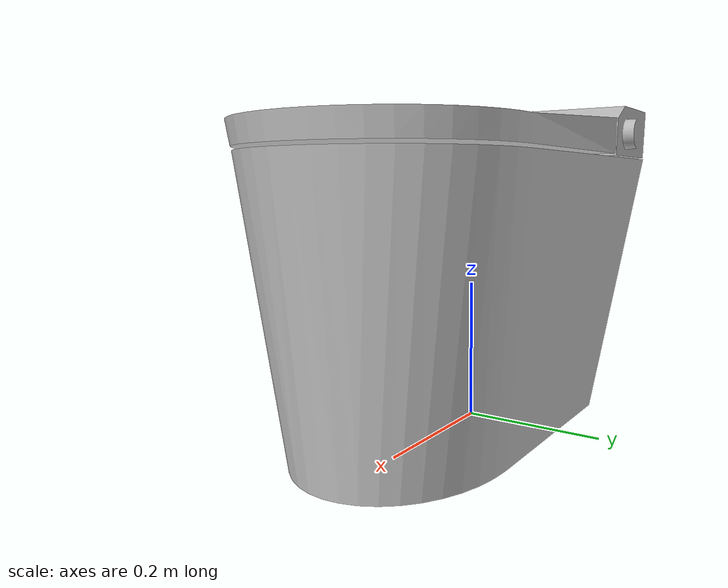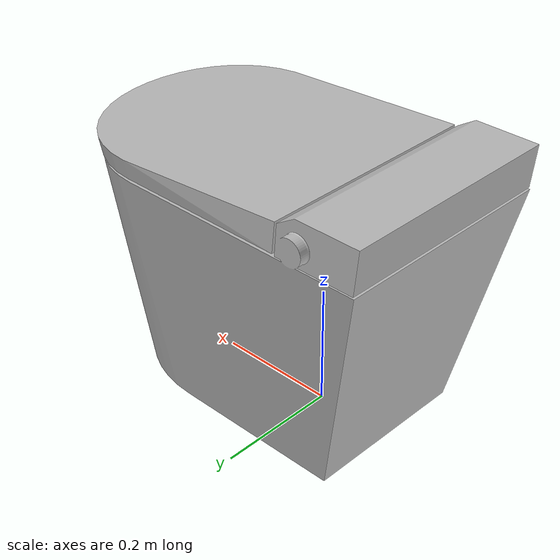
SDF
<?xml version='1.0'?>
<sdf version='1.6'>
  <model name='08_Toilet'>
    <link name='body'>
	  <inertial>
        <mass>50</mass>
        <pose frame=''>0 0 0 0 0 0</pose>
        <inertia>
          <ixx>1.5217041666</ixx>
          <ixy>0</ixy>
          <ixz>0</ixz>
          <iyy>1.39503750</iyy>
          <iyz>0</iyz>
          <izz>1.206666</izz>
        </inertia>
      </inertial>
      <pose frame=''>0 0 0 0 -0 0</pose>
      <self_collide>0</self_collide>
      <kinematic>0</kinematic>
      <gravity>1</gravity>
      <visual name='visual'>
        <geometry>
          <mesh>
            <uri>model://Toilet_37fa78cd7dc4_lod0/meshes/visual_LowPoly_08_Toilet.dae</uri>
          </mesh>
        </geometry>
		<meta> <layer> 1 </layer></meta>
      </visual>
      <collision name='collision_0'>
        <laser_retro>0</laser_retro>
        <max_contacts>10</max_contacts>
        <pose frame=''>0 0 0 0 -0 0</pose>
        <geometry>
          <mesh>
            <uri>model://Toilet_37fa78cd7dc4_lod0/meshes/collision_08_Toilet.dae</uri>
            <scale>1 1 1</scale>
          </mesh>
        </geometry>
		<surface>
          <friction>
            <ode>
              <mu>0.6</mu>
              <mu2>0.6</mu2>
              <fdir1>0 0 0</fdir1>
              <slip1>0</slip1>
              <slip2>0</slip2>
            </ode>
            <torsional>
              <coefficient>1</coefficient>
              <patch_radius>0</patch_radius>
              <surface_radius>0</surface_radius>
              <use_patch_radius>1</use_patch_radius>
              <ode>
                <slip>0</slip>
              </ode>
            </torsional>
          </friction>
        </surface>
      </collision>
    </link>
    <static>true</static>
  </model>
</sdf>
